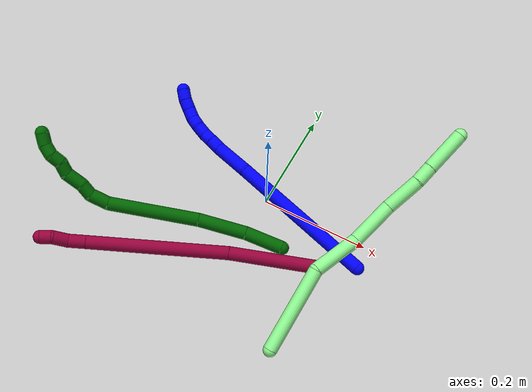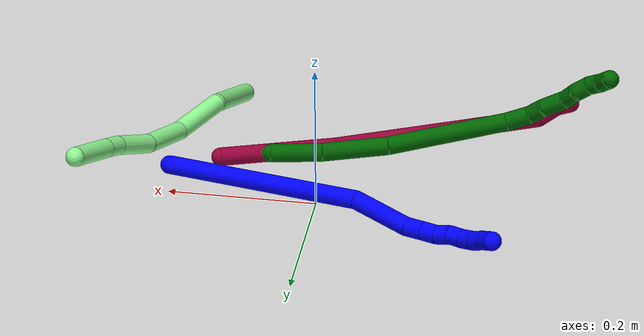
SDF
<sdf version="1.7">
 <world name="default">
  <model name="1">
   <static>0</static>
   <link name="1">
    <collision name="collision-cylinder-e_1_1_4">
     <pose>-0.122406 0.049401 0.041511 -0.871965 -1.08567 0.547983</pose>
     <geometry><cylinder><radius>0.0125</radius><length>0.276745</length></cylinder></geometry>
     <surface>
      <friction><ode><mu>1.16</mu><mu2>1.16</mu2><slip1>0</slip1><slip2>0</slip2></ode></friction>
      <contact><ode><kp>1e+06</kp><kd>1</kd><max_vel>0</max_vel><min_depth>0.001</min_depth></ode></contact>
     </surface>
    </collision>
    <visual name="visual-cylinder-e_1_1_4">
     <pose>-0.122406 0.049401 0.041511 -0.871965 -1.08567 0.547983</pose>
     <geometry><cylinder><radius>0.0125</radius><length>0.276745</length></cylinder></geometry>
     <material><ambient>0 0 1 1</ambient></material>
    </visual>
    <collision name="collision-cylinder-e_2_4_5">
     <pose>-0.282557 0.109242 0.084381 -1.44143 -1.29879 1.1763</pose>
     <geometry><cylinder><radius>0.0125</radius><length>0.07837</length></cylinder></geometry>
     <surface>
      <friction><ode><mu>1.16</mu><mu2>1.16</mu2><slip1>0</slip1><slip2>0</slip2></ode></friction>
      <contact><ode><kp>1e+06</kp><kd>1</kd><max_vel>0</max_vel><min_depth>0.001</min_depth></ode></contact>
     </surface>
    </collision>
    <visual name="visual-cylinder-e_2_4_5">
     <pose>-0.282557 0.109242 0.084381 -1.44143 -1.29879 1.1763</pose>
     <geometry><cylinder><radius>0.0125</radius><length>0.07837</length></cylinder></geometry>
     <material><ambient>0 0 1 1</ambient></material>
    </visual>
    <collision name="collision-cylinder-e_3_5_6">
     <pose>-0.331107 0.124428 0.088595 -1.02914 -1.09706 0.665299</pose>
     <geometry><cylinder><radius>0.0125</radius><length>0.024286</length></cylinder></geometry>
     <surface>
      <friction><ode><mu>1.16</mu><mu2>1.16</mu2><slip1>0</slip1><slip2>0</slip2></ode></friction>
      <contact><ode><kp>1e+06</kp><kd>1</kd><max_vel>0</max_vel><min_depth>0.001</min_depth></ode></contact>
     </surface>
    </collision>
    <visual name="visual-cylinder-e_3_5_6">
     <pose>-0.331107 0.124428 0.088595 -1.02914 -1.09706 0.665299</pose>
     <geometry><cylinder><radius>0.0125</radius><length>0.024286</length></cylinder></geometry>
     <material><ambient>0 0 1 1</ambient></material>
    </visual>
    <collision name="collision-cylinder-e_4_6_7">
     <pose>-0.351133 0.133119 0.093727 -1.04735 -1.11209 0.689091</pose>
     <geometry><cylinder><radius>0.0125</radius><length>0.020566</length></cylinder></geometry>
     <surface>
      <friction><ode><mu>1.16</mu><mu2>1.16</mu2><slip1>0</slip1><slip2>0</slip2></ode></friction>
      <contact><ode><kp>1e+06</kp><kd>1</kd><max_vel>0</max_vel><min_depth>0.001</min_depth></ode></contact>
     </surface>
    </collision>
    <visual name="visual-cylinder-e_4_6_7">
     <pose>-0.351133 0.133119 0.093727 -1.04735 -1.11209 0.689091</pose>
     <geometry><cylinder><radius>0.0125</radius><length>0.020566</length></cylinder></geometry>
     <material><ambient>0 0 1 1</ambient></material>
    </visual>
    <collision name="collision-cylinder-e_5_7_8">
     <pose>-0.367777 0.142401 0.100062 -0.920827 -0.836089 0.433714</pose>
     <geometry><cylinder><radius>0.0125</radius><length>0.020008</length></cylinder></geometry>
     <surface>
      <friction><ode><mu>1.16</mu><mu2>1.16</mu2><slip1>0</slip1><slip2>0</slip2></ode></friction>
      <contact><ode><kp>1e+06</kp><kd>1</kd><max_vel>0</max_vel><min_depth>0.001</min_depth></ode></contact>
     </surface>
    </collision>
    <visual name="visual-cylinder-e_5_7_8">
     <pose>-0.367777 0.142401 0.100062 -0.920827 -0.836089 0.433714</pose>
     <geometry><cylinder><radius>0.0125</radius><length>0.020008</length></cylinder></geometry>
     <material><ambient>0 0 1 1</ambient></material>
    </visual>
    <collision name="collision-cylinder-e_6_8_9">
     <pose>-0.38349 0.153088 0.105794 -1.26759 -0.976405 0.744258</pose>
     <geometry><cylinder><radius>0.0125</radius><length>0.020014</length></cylinder></geometry>
     <surface>
      <friction><ode><mu>1.16</mu><mu2>1.16</mu2><slip1>0</slip1><slip2>0</slip2></ode></friction>
      <contact><ode><kp>1e+06</kp><kd>1</kd><max_vel>0</max_vel><min_depth>0.001</min_depth></ode></contact>
     </surface>
    </collision>
    <visual name="visual-cylinder-e_6_8_9">
     <pose>-0.38349 0.153088 0.105794 -1.26759 -0.976405 0.744258</pose>
     <geometry><cylinder><radius>0.0125</radius><length>0.020014</length></cylinder></geometry>
     <material><ambient>0 0 1 1</ambient></material>
    </visual>
    <collision name="collision-cylinder-e_7_9_10">
     <pose>-0.398294 0.16575 0.109505 -1.29897 -0.709043 0.54805</pose>
     <geometry><cylinder><radius>0.0125</radius><length>0.020005</length></cylinder></geometry>
     <surface>
      <friction><ode><mu>1.16</mu><mu2>1.16</mu2><slip1>0</slip1><slip2>0</slip2></ode></friction>
      <contact><ode><kp>1e+06</kp><kd>1</kd><max_vel>0</max_vel><min_depth>0.001</min_depth></ode></contact>
     </surface>
    </collision>
    <visual name="visual-cylinder-e_7_9_10">
     <pose>-0.398294 0.16575 0.109505 -1.29897 -0.709043 0.54805</pose>
     <geometry><cylinder><radius>0.0125</radius><length>0.020005</length></cylinder></geometry>
     <material><ambient>0 0 1 1</ambient></material>
    </visual>
    <collision name="collision-cylinder-e_8_10_11">
     <pose>-0.410429 0.180727 0.114654 -1.1852 -0.597023 0.408593</pose>
     <geometry><cylinder><radius>0.0125</radius><length>0.020003</length></cylinder></geometry>
     <surface>
      <friction><ode><mu>1.16</mu><mu2>1.16</mu2><slip1>0</slip1><slip2>0</slip2></ode></friction>
      <contact><ode><kp>1e+06</kp><kd>1</kd><max_vel>0</max_vel><min_depth>0.001</min_depth></ode></contact>
     </surface>
    </collision>
    <visual name="visual-cylinder-e_8_10_11">
     <pose>-0.410429 0.180727 0.114654 -1.1852 -0.597023 0.408593</pose>
     <geometry><cylinder><radius>0.0125</radius><length>0.020003</length></cylinder></geometry>
     <material><ambient>0 0 1 1</ambient></material>
    </visual>
    <collision name="collision-cylinder-e_9_11_2">
     <pose>-0.4207 0.197068 0.119533 -1.36982 -0.48334 0.397356</pose>
     <geometry><cylinder><radius>0.0125</radius><length>0.020003</length></cylinder></geometry>
     <surface>
      <friction><ode><mu>1.16</mu><mu2>1.16</mu2><slip1>0</slip1><slip2>0</slip2></ode></friction>
      <contact><ode><kp>1e+06</kp><kd>1</kd><max_vel>0</max_vel><min_depth>0.001</min_depth></ode></contact>
     </surface>
    </collision>
    <visual name="visual-cylinder-e_9_11_2">
     <pose>-0.4207 0.197068 0.119533 -1.36982 -0.48334 0.397356</pose>
     <geometry><cylinder><radius>0.0125</radius><length>0.020003</length></cylinder></geometry>
     <material><ambient>0 0 1 1</ambient></material>
    </visual>
    <collision name="collision-sphere-2">
     <pose>-0.425348 0.205745 0.121301 0 -0 0</pose>
     <geometry><sphere><radius>0.0125</radius></sphere></geometry>
     <surface>
      <friction><ode><mu>1.16</mu><mu2>1.16</mu2><slip1>0</slip1><slip2>0</slip2></ode></friction>
      <contact><ode><kp>1e+06</kp><kd>1</kd><max_vel>0</max_vel><min_depth>0.001</min_depth></ode></contact>
     </surface>
    </collision>
    <visual name="visual-sphere-2">
     <pose>-0.425348 0.205745 0.121301 0 -0 0</pose>
     <geometry><sphere><radius>0.0125</radius></sphere></geometry>
     <material><ambient>0 0 1 1</ambient></material>
    </visual>
    <collision name="collision-sphere-11">
     <pose>-0.416051 0.18839 0.117765 0 -0 0</pose>
     <geometry><sphere><radius>0.0125</radius></sphere></geometry>
     <surface>
      <friction><ode><mu>1.16</mu><mu2>1.16</mu2><slip1>0</slip1><slip2>0</slip2></ode></friction>
      <contact><ode><kp>1e+06</kp><kd>1</kd><max_vel>0</max_vel><min_depth>0.001</min_depth></ode></contact>
     </surface>
    </collision>
    <visual name="visual-sphere-11">
     <pose>-0.416051 0.18839 0.117765 0 -0 0</pose>
     <geometry><sphere><radius>0.0125</radius></sphere></geometry>
     <material><ambient>0 0 1 1</ambient></material>
    </visual>
    <collision name="collision-sphere-10">
     <pose>-0.404806 0.173063 0.111543 0 -0 0</pose>
     <geometry><sphere><radius>0.0125</radius></sphere></geometry>
     <surface>
      <friction><ode><mu>1.16</mu><mu2>1.16</mu2><slip1>0</slip1><slip2>0</slip2></ode></friction>
      <contact><ode><kp>1e+06</kp><kd>1</kd><max_vel>0</max_vel><min_depth>0.001</min_depth></ode></contact>
     </surface>
    </collision>
    <visual name="visual-sphere-10">
     <pose>-0.404806 0.173063 0.111543 0 -0 0</pose>
     <geometry><sphere><radius>0.0125</radius></sphere></geometry>
     <material><ambient>0 0 1 1</ambient></material>
    </visual>
    <collision name="collision-sphere-9">
     <pose>-0.391781 0.158437 0.107467 0 -0 0</pose>
     <geometry><sphere><radius>0.0125</radius></sphere></geometry>
     <surface>
      <friction><ode><mu>1.16</mu><mu2>1.16</mu2><slip1>0</slip1><slip2>0</slip2></ode></friction>
      <contact><ode><kp>1e+06</kp><kd>1</kd><max_vel>0</max_vel><min_depth>0.001</min_depth></ode></contact>
     </surface>
    </collision>
    <visual name="visual-sphere-9">
     <pose>-0.391781 0.158437 0.107467 0 -0 0</pose>
     <geometry><sphere><radius>0.0125</radius></sphere></geometry>
     <material><ambient>0 0 1 1</ambient></material>
    </visual>
    <collision name="collision-sphere-4">
     <pose>-0.244813 0.098802 0.083023 0 -0 0</pose>
     <geometry><sphere><radius>0.0125</radius></sphere></geometry>
     <surface>
      <friction><ode><mu>1.16</mu><mu2>1.16</mu2><slip1>0</slip1><slip2>0</slip2></ode></friction>
      <contact><ode><kp>1e+06</kp><kd>1</kd><max_vel>0</max_vel><min_depth>0.001</min_depth></ode></contact>
     </surface>
    </collision>
    <visual name="visual-sphere-4">
     <pose>-0.244813 0.098802 0.083023 0 -0 0</pose>
     <geometry><sphere><radius>0.0125</radius></sphere></geometry>
     <material><ambient>0 0 1 1</ambient></material>
    </visual>
    <collision name="collision-sphere-1">
     <geometry><sphere><radius>0.0125</radius></sphere></geometry>
     <surface>
      <friction><ode><mu>1.16</mu><mu2>1.16</mu2><slip1>0</slip1><slip2>0</slip2></ode></friction>
      <contact><ode><kp>1e+06</kp><kd>1</kd><max_vel>0</max_vel><min_depth>0.001</min_depth></ode></contact>
     </surface>
    </collision>
    <visual name="visual-sphere-1">
     <geometry><sphere><radius>0.0125</radius></sphere></geometry>
     <material><ambient>0 0 1 1</ambient></material>
    </visual>
    <collision name="collision-sphere-8">
     <pose>-0.3752 0.14774 0.10412 0 -0 0</pose>
     <geometry><sphere><radius>0.0125</radius></sphere></geometry>
     <surface>
      <friction><ode><mu>1.16</mu><mu2>1.16</mu2><slip1>0</slip1><slip2>0</slip2></ode></friction>
      <contact><ode><kp>1e+06</kp><kd>1</kd><max_vel>0</max_vel><min_depth>0.001</min_depth></ode></contact>
     </surface>
    </collision>
    <visual name="visual-sphere-8">
     <pose>-0.3752 0.14774 0.10412 0 -0 0</pose>
     <geometry><sphere><radius>0.0125</radius></sphere></geometry>
     <material><ambient>0 0 1 1</ambient></material>
    </visual>
    <collision name="collision-sphere-5">
     <pose>-0.320302 0.119681 0.085739 0 -0 0</pose>
     <geometry><sphere><radius>0.0125</radius></sphere></geometry>
     <surface>
      <friction><ode><mu>1.16</mu><mu2>1.16</mu2><slip1>0</slip1><slip2>0</slip2></ode></friction>
      <contact><ode><kp>1e+06</kp><kd>1</kd><max_vel>0</max_vel><min_depth>0.001</min_depth></ode></contact>
     </surface>
    </collision>
    <visual name="visual-sphere-5">
     <pose>-0.320302 0.119681 0.085739 0 -0 0</pose>
     <geometry><sphere><radius>0.0125</radius></sphere></geometry>
     <material><ambient>0 0 1 1</ambient></material>
    </visual>
    <collision name="collision-sphere-6">
     <pose>-0.341913 0.129175 0.091451 0 -0 0</pose>
     <geometry><sphere><radius>0.0125</radius></sphere></geometry>
     <surface>
      <friction><ode><mu>1.16</mu><mu2>1.16</mu2><slip1>0</slip1><slip2>0</slip2></ode></friction>
      <contact><ode><kp>1e+06</kp><kd>1</kd><max_vel>0</max_vel><min_depth>0.001</min_depth></ode></contact>
     </surface>
    </collision>
    <visual name="visual-sphere-6">
     <pose>-0.341913 0.129175 0.091451 0 -0 0</pose>
     <geometry><sphere><radius>0.0125</radius></sphere></geometry>
     <material><ambient>0 0 1 1</ambient></material>
    </visual>
    <collision name="collision-sphere-7">
     <pose>-0.360354 0.137062 0.096003 0 -0 0</pose>
     <geometry><sphere><radius>0.0125</radius></sphere></geometry>
     <surface>
      <friction><ode><mu>1.16</mu><mu2>1.16</mu2><slip1>0</slip1><slip2>0</slip2></ode></friction>
      <contact><ode><kp>1e+06</kp><kd>1</kd><max_vel>0</max_vel><min_depth>0.001</min_depth></ode></contact>
     </surface>
    </collision>
    <visual name="visual-sphere-7">
     <pose>-0.360354 0.137062 0.096003 0 -0 0</pose>
     <geometry><sphere><radius>0.0125</radius></sphere></geometry>
     <material><ambient>0 0 1 1</ambient></material>
    </visual>
    <inertial>
     <pose>-0.221817 0.089556 0.066349 0 -0 0</pose>
     <mass>0.5</mass>
     <inertia>
      <ixx>0.001131</ixx>
      <ixy>0</ixy>
      <ixz>0</ixz>
      <iyy>0.002113</iyy>
      <iyz>0</iyz>
      <izz>0.000979</izz>
     </inertia>
    </inertial>
   </link>
   <pose>0.208085 -0.048132 0.012369 0.690896 -0.420688 -0.190544</pose>
  </model>
  <model name="6">
   <static>0</static>
   <link name="6">
    <collision name="collision-cylinder-e_1_1_4">
     <pose>-0.010518 0.010585 0.031426 -0.324902 -0.307151 0.050729</pose>
     <geometry><cylinder><radius>0.0125</radius><length>0.069578</length></cylinder></geometry>
     <surface>
      <friction><ode><mu>1.16</mu><mu2>1.16</mu2><slip1>0</slip1><slip2>0</slip2></ode></friction>
      <contact><ode><kp>1e+06</kp><kd>1</kd><max_vel>0</max_vel><min_depth>0.001</min_depth></ode></contact>
     </surface>
    </collision>
    <visual name="visual-cylinder-e_1_1_4">
     <pose>-0.010518 0.010585 0.031426 -0.324902 -0.307151 0.050729</pose>
     <geometry><cylinder><radius>0.0125</radius><length>0.069578</length></cylinder></geometry>
     <material><ambient>0 0.392157 0.003922 1</ambient></material>
    </visual>
    <collision name="collision-cylinder-e_2_4_5">
     <pose>-0.02906 0.037333 0.103425 -0.379078 -0.181701 0.03495</pose>
     <geometry><cylinder><radius>0.0125</radius><length>0.088808</length></cylinder></geometry>
     <surface>
      <friction><ode><mu>1.16</mu><mu2>1.16</mu2><slip1>0</slip1><slip2>0</slip2></ode></friction>
      <contact><ode><kp>1e+06</kp><kd>1</kd><max_vel>0</max_vel><min_depth>0.001</min_depth></ode></contact>
     </surface>
    </collision>
    <visual name="visual-cylinder-e_2_4_5">
     <pose>-0.02906 0.037333 0.103425 -0.379078 -0.181701 0.03495</pose>
     <geometry><cylinder><radius>0.0125</radius><length>0.088808</length></cylinder></geometry>
     <material><ambient>0 0.392157 0.003922 1</ambient></material>
    </visual>
    <collision name="collision-cylinder-e_3_5_6">
     <pose>-0.043049 0.089514 0.217857 -0.453738 -0.072461 0.016734</pose>
     <geometry><cylinder><radius>0.0125</radius><length>0.16478</length></cylinder></geometry>
     <surface>
      <friction><ode><mu>1.16</mu><mu2>1.16</mu2><slip1>0</slip1><slip2>0</slip2></ode></friction>
      <contact><ode><kp>1e+06</kp><kd>1</kd><max_vel>0</max_vel><min_depth>0.001</min_depth></ode></contact>
     </surface>
    </collision>
    <visual name="visual-cylinder-e_3_5_6">
     <pose>-0.043049 0.089514 0.217857 -0.453738 -0.072461 0.016734</pose>
     <geometry><cylinder><radius>0.0125</radius><length>0.16478</length></cylinder></geometry>
     <material><ambient>0 0.392157 0.003922 1</ambient></material>
    </visual>
    <collision name="collision-cylinder-e_4_6_7">
     <pose>-0.054445 0.135043 0.305013 -0.62081 -0.320746 0.103685</pose>
     <geometry><cylinder><radius>0.0125</radius><length>0.034453</length></cylinder></geometry>
     <surface>
      <friction><ode><mu>1.16</mu><mu2>1.16</mu2><slip1>0</slip1><slip2>0</slip2></ode></friction>
      <contact><ode><kp>1e+06</kp><kd>1</kd><max_vel>0</max_vel><min_depth>0.001</min_depth></ode></contact>
     </surface>
    </collision>
    <visual name="visual-cylinder-e_4_6_7">
     <pose>-0.054445 0.135043 0.305013 -0.62081 -0.320746 0.103685</pose>
     <geometry><cylinder><radius>0.0125</radius><length>0.034453</length></cylinder></geometry>
     <material><ambient>0 0.392157 0.003922 1</ambient></material>
    </visual>
    <collision name="collision-cylinder-e_5_7_8">
     <pose>-0.066994 0.15226 0.323292 -0.997034 -0.659631 0.368475</pose>
     <geometry><cylinder><radius>0.0125</radius><length>0.023228</length></cylinder></geometry>
     <surface>
      <friction><ode><mu>1.16</mu><mu2>1.16</mu2><slip1>0</slip1><slip2>0</slip2></ode></friction>
      <contact><ode><kp>1e+06</kp><kd>1</kd><max_vel>0</max_vel><min_depth>0.001</min_depth></ode></contact>
     </surface>
    </collision>
    <visual name="visual-cylinder-e_5_7_8">
     <pose>-0.066994 0.15226 0.323292 -0.997034 -0.659631 0.368475</pose>
     <geometry><cylinder><radius>0.0125</radius><length>0.023228</length></cylinder></geometry>
     <material><ambient>0 0.392157 0.003922 1</ambient></material>
    </visual>
    <collision name="collision-cylinder-e_6_8_9">
     <pose>-0.081556 0.170131 0.339094 -0.754089 -0.464864 0.186924</pose>
     <geometry><cylinder><radius>0.0125</radius><length>0.033214</length></cylinder></geometry>
     <surface>
      <friction><ode><mu>1.16</mu><mu2>1.16</mu2><slip1>0</slip1><slip2>0</slip2></ode></friction>
      <contact><ode><kp>1e+06</kp><kd>1</kd><max_vel>0</max_vel><min_depth>0.001</min_depth></ode></contact>
     </surface>
    </collision>
    <visual name="visual-cylinder-e_6_8_9">
     <pose>-0.081556 0.170131 0.339094 -0.754089 -0.464864 0.186924</pose>
     <geometry><cylinder><radius>0.0125</radius><length>0.033214</length></cylinder></geometry>
     <material><ambient>0 0.392157 0.003922 1</ambient></material>
    </visual>
    <collision name="collision-cylinder-e_7_9_10">
     <pose>-0.097188 0.187893 0.352488 -1.24429 -0.795549 0.585347</pose>
     <geometry><cylinder><radius>0.0125</radius><length>0.022926</length></cylinder></geometry>
     <surface>
      <friction><ode><mu>1.16</mu><mu2>1.16</mu2><slip1>0</slip1><slip2>0</slip2></ode></friction>
      <contact><ode><kp>1e+06</kp><kd>1</kd><max_vel>0</max_vel><min_depth>0.001</min_depth></ode></contact>
     </surface>
    </collision>
    <visual name="visual-cylinder-e_7_9_10">
     <pose>-0.097188 0.187893 0.352488 -1.24429 -0.795549 0.585347</pose>
     <geometry><cylinder><radius>0.0125</radius><length>0.022926</length></cylinder></geometry>
     <material><ambient>0 0.392157 0.003922 1</ambient></material>
    </visual>
    <collision name="collision-cylinder-e_8_10_11">
     <pose>-0.110073 0.202763 0.360967 -0.888641 -0.464796 0.224401</pose>
     <geometry><cylinder><radius>0.0125</radius><length>0.020957</length></cylinder></geometry>
     <surface>
      <friction><ode><mu>1.16</mu><mu2>1.16</mu2><slip1>0</slip1><slip2>0</slip2></ode></friction>
      <contact><ode><kp>1e+06</kp><kd>1</kd><max_vel>0</max_vel><min_depth>0.001</min_depth></ode></contact>
     </surface>
    </collision>
    <visual name="visual-cylinder-e_8_10_11">
     <pose>-0.110073 0.202763 0.360967 -0.888641 -0.464796 0.224401</pose>
     <geometry><cylinder><radius>0.0125</radius><length>0.020957</length></cylinder></geometry>
     <material><ambient>0 0.392157 0.003922 1</ambient></material>
    </visual>
    <collision name="collision-cylinder-e_9_11_12">
     <pose>-0.122512 0.214525 0.371351 -0.786843 -0.884472 0.388128</pose>
     <geometry><cylinder><radius>0.0125</radius><length>0.020018</length></cylinder></geometry>
     <surface>
      <friction><ode><mu>1.16</mu><mu2>1.16</mu2><slip1>0</slip1><slip2>0</slip2></ode></friction>
      <contact><ode><kp>1e+06</kp><kd>1</kd><max_vel>0</max_vel><min_depth>0.001</min_depth></ode></contact>
     </surface>
    </collision>
    <visual name="visual-cylinder-e_9_11_12">
     <pose>-0.122512 0.214525 0.371351 -0.786843 -0.884472 0.388128</pose>
     <geometry><cylinder><radius>0.0125</radius><length>0.020018</length></cylinder></geometry>
     <material><ambient>0 0.392157 0.003922 1</ambient></material>
    </visual>
    <collision name="collision-cylinder-e_10_12_2">
     <pose>-0.13999 0.223926 0.37742 -1.25736 -1.08336 0.824835</pose>
     <geometry><cylinder><radius>0.0125</radius><length>0.022037</length></cylinder></geometry>
     <surface>
      <friction><ode><mu>1.16</mu><mu2>1.16</mu2><slip1>0</slip1><slip2>0</slip2></ode></friction>
      <contact><ode><kp>1e+06</kp><kd>1</kd><max_vel>0</max_vel><min_depth>0.001</min_depth></ode></contact>
     </surface>
    </collision>
    <visual name="visual-cylinder-e_10_12_2">
     <pose>-0.13999 0.223926 0.37742 -1.25736 -1.08336 0.824835</pose>
     <geometry><cylinder><radius>0.0125</radius><length>0.022037</length></cylinder></geometry>
     <material><ambient>0 0.392157 0.003922 1</ambient></material>
    </visual>
    <collision name="collision-sphere-2">
     <pose>-0.149726 0.228835 0.379011 0 -0 0</pose>
     <geometry><sphere><radius>0.0125</radius></sphere></geometry>
     <surface>
      <friction><ode><mu>1.16</mu><mu2>1.16</mu2><slip1>0</slip1><slip2>0</slip2></ode></friction>
      <contact><ode><kp>1e+06</kp><kd>1</kd><max_vel>0</max_vel><min_depth>0.001</min_depth></ode></contact>
     </surface>
    </collision>
    <visual name="visual-sphere-2">
     <pose>-0.149726 0.228835 0.379011 0 -0 0</pose>
     <geometry><sphere><radius>0.0125</radius></sphere></geometry>
     <material><ambient>0 0.392157 0.003922 1</ambient></material>
    </visual>
    <collision name="collision-sphere-12">
     <pose>-0.130255 0.219017 0.375829 0 -0 0</pose>
     <geometry><sphere><radius>0.0125</radius></sphere></geometry>
     <surface>
      <friction><ode><mu>1.16</mu><mu2>1.16</mu2><slip1>0</slip1><slip2>0</slip2></ode></friction>
      <contact><ode><kp>1e+06</kp><kd>1</kd><max_vel>0</max_vel><min_depth>0.001</min_depth></ode></contact>
     </surface>
    </collision>
    <visual name="visual-sphere-12">
     <pose>-0.130255 0.219017 0.375829 0 -0 0</pose>
     <geometry><sphere><radius>0.0125</radius></sphere></geometry>
     <material><ambient>0 0.392157 0.003922 1</ambient></material>
    </visual>
    <collision name="collision-sphere-11">
     <pose>-0.11477 0.210034 0.366872 0 -0 0</pose>
     <geometry><sphere><radius>0.0125</radius></sphere></geometry>
     <surface>
      <friction><ode><mu>1.16</mu><mu2>1.16</mu2><slip1>0</slip1><slip2>0</slip2></ode></friction>
      <contact><ode><kp>1e+06</kp><kd>1</kd><max_vel>0</max_vel><min_depth>0.001</min_depth></ode></contact>
     </surface>
    </collision>
    <visual name="visual-sphere-11">
     <pose>-0.11477 0.210034 0.366872 0 -0 0</pose>
     <geometry><sphere><radius>0.0125</radius></sphere></geometry>
     <material><ambient>0 0.392157 0.003922 1</ambient></material>
    </visual>
    <collision name="collision-sphere-10">
     <pose>-0.105376 0.195492 0.355061 0 -0 0</pose>
     <geometry><sphere><radius>0.0125</radius></sphere></geometry>
     <surface>
      <friction><ode><mu>1.16</mu><mu2>1.16</mu2><slip1>0</slip1><slip2>0</slip2></ode></friction>
      <contact><ode><kp>1e+06</kp><kd>1</kd><max_vel>0</max_vel><min_depth>0.001</min_depth></ode></contact>
     </surface>
    </collision>
    <visual name="visual-sphere-10">
     <pose>-0.105376 0.195492 0.355061 0 -0 0</pose>
     <geometry><sphere><radius>0.0125</radius></sphere></geometry>
     <material><ambient>0 0.392157 0.003922 1</ambient></material>
    </visual>
    <collision name="collision-sphere-9">
     <pose>-0.089001 0.180294 0.349914 0 -0 0</pose>
     <geometry><sphere><radius>0.0125</radius></sphere></geometry>
     <surface>
      <friction><ode><mu>1.16</mu><mu2>1.16</mu2><slip1>0</slip1><slip2>0</slip2></ode></friction>
      <contact><ode><kp>1e+06</kp><kd>1</kd><max_vel>0</max_vel><min_depth>0.001</min_depth></ode></contact>
     </surface>
    </collision>
    <visual name="visual-sphere-9">
     <pose>-0.089001 0.180294 0.349914 0 -0 0</pose>
     <geometry><sphere><radius>0.0125</radius></sphere></geometry>
     <material><ambient>0 0.392157 0.003922 1</ambient></material>
    </visual>
    <collision name="collision-sphere-4">
     <pose>-0.021037 0.021171 0.062852 0 -0 0</pose>
     <geometry><sphere><radius>0.0125</radius></sphere></geometry>
     <surface>
      <friction><ode><mu>1.16</mu><mu2>1.16</mu2><slip1>0</slip1><slip2>0</slip2></ode></friction>
      <contact><ode><kp>1e+06</kp><kd>1</kd><max_vel>0</max_vel><min_depth>0.001</min_depth></ode></contact>
     </surface>
    </collision>
    <visual name="visual-sphere-4">
     <pose>-0.021037 0.021171 0.062852 0 -0 0</pose>
     <geometry><sphere><radius>0.0125</radius></sphere></geometry>
     <material><ambient>0 0.392157 0.003922 1</ambient></material>
    </visual>
    <collision name="collision-sphere-1">
     <geometry><sphere><radius>0.0125</radius></sphere></geometry>
     <surface>
      <friction><ode><mu>1.16</mu><mu2>1.16</mu2><slip1>0</slip1><slip2>0</slip2></ode></friction>
      <contact><ode><kp>1e+06</kp><kd>1</kd><max_vel>0</max_vel><min_depth>0.001</min_depth></ode></contact>
     </surface>
    </collision>
    <visual name="visual-sphere-1">
     <geometry><sphere><radius>0.0125</radius></sphere></geometry>
     <material><ambient>0 0.392157 0.003922 1</ambient></material>
    </visual>
    <collision name="collision-sphere-8">
     <pose>-0.074111 0.159968 0.328274 0 -0 0</pose>
     <geometry><sphere><radius>0.0125</radius></sphere></geometry>
     <surface>
      <friction><ode><mu>1.16</mu><mu2>1.16</mu2><slip1>0</slip1><slip2>0</slip2></ode></friction>
      <contact><ode><kp>1e+06</kp><kd>1</kd><max_vel>0</max_vel><min_depth>0.001</min_depth></ode></contact>
     </surface>
    </collision>
    <visual name="visual-sphere-8">
     <pose>-0.074111 0.159968 0.328274 0 -0 0</pose>
     <geometry><sphere><radius>0.0125</radius></sphere></geometry>
     <material><ambient>0 0.392157 0.003922 1</ambient></material>
    </visual>
    <collision name="collision-sphere-5">
     <pose>-0.037084 0.053495 0.143997 0 -0 0</pose>
     <geometry><sphere><radius>0.0125</radius></sphere></geometry>
     <surface>
      <friction><ode><mu>1.16</mu><mu2>1.16</mu2><slip1>0</slip1><slip2>0</slip2></ode></friction>
      <contact><ode><kp>1e+06</kp><kd>1</kd><max_vel>0</max_vel><min_depth>0.001</min_depth></ode></contact>
     </surface>
    </collision>
    <visual name="visual-sphere-5">
     <pose>-0.037084 0.053495 0.143997 0 -0 0</pose>
     <geometry><sphere><radius>0.0125</radius></sphere></geometry>
     <material><ambient>0 0.392157 0.003922 1</ambient></material>
    </visual>
    <collision name="collision-sphere-6">
     <pose>-0.049014 0.125533 0.291716 0 -0 0</pose>
     <geometry><sphere><radius>0.0125</radius></sphere></geometry>
     <surface>
      <friction><ode><mu>1.16</mu><mu2>1.16</mu2><slip1>0</slip1><slip2>0</slip2></ode></friction>
      <contact><ode><kp>1e+06</kp><kd>1</kd><max_vel>0</max_vel><min_depth>0.001</min_depth></ode></contact>
     </surface>
    </collision>
    <visual name="visual-sphere-6">
     <pose>-0.049014 0.125533 0.291716 0 -0 0</pose>
     <geometry><sphere><radius>0.0125</radius></sphere></geometry>
     <material><ambient>0 0.392157 0.003922 1</ambient></material>
    </visual>
    <collision name="collision-sphere-7">
     <pose>-0.059876 0.144552 0.318311 0 -0 0</pose>
     <geometry><sphere><radius>0.0125</radius></sphere></geometry>
     <surface>
      <friction><ode><mu>1.16</mu><mu2>1.16</mu2><slip1>0</slip1><slip2>0</slip2></ode></friction>
      <contact><ode><kp>1e+06</kp><kd>1</kd><max_vel>0</max_vel><min_depth>0.001</min_depth></ode></contact>
     </surface>
    </collision>
    <visual name="visual-sphere-7">
     <pose>-0.059876 0.144552 0.318311 0 -0 0</pose>
     <geometry><sphere><radius>0.0125</radius></sphere></geometry>
     <material><ambient>0 0.392157 0.003922 1</ambient></material>
    </visual>
    <inertial>
     <pose>-0.053239 0.100856 0.215895 0 -0 0</pose>
     <mass>0.5</mass>
     <inertia>
      <ixx>0.000484</ixx>
      <ixy>0</ixy>
      <ixz>0</ixz>
      <iyy>0.000473</iyy>
      <iyz>0</iyz>
      <izz>-0.000121</izz>
     </inertia>
    </inertial>
   </link>
   <pose>0.074822 -0.081323 0.023047 1.93019 0.297955 -1.17497</pose>
  </model>
  <model name="8">
   <static>0</static>
   <link name="8">
    <collision name="collision-cylinder-e_1_1_4">
     <pose>-0.004543 0.00382 0.079052 -0.048285 -0.057345 0.001385</pose>
     <geometry><cylinder><radius>0.0125</radius><length>0.158548</length></cylinder></geometry>
     <surface>
      <friction><ode><mu>1.16</mu><mu2>1.16</mu2><slip1>0</slip1><slip2>0</slip2></ode></friction>
      <contact><ode><kp>1e+06</kp><kd>1</kd><max_vel>0</max_vel><min_depth>0.001</min_depth></ode></contact>
     </surface>
    </collision>
    <visual name="visual-cylinder-e_1_1_4">
     <pose>-0.004543 0.00382 0.079052 -0.048285 -0.057345 0.001385</pose>
     <geometry><cylinder><radius>0.0125</radius><length>0.158548</length></cylinder></geometry>
     <material><ambient>0.584314 0 0.227451 1</ambient></material>
    </visual>
    <collision name="collision-cylinder-e_2_4_5">
     <pose>-0.025671 0.006315 0.285629 0.010392 -0.129312 -0.000673</pose>
     <geometry><cylinder><radius>0.0125</radius><length>0.257214</length></cylinder></geometry>
     <surface>
      <friction><ode><mu>1.16</mu><mu2>1.16</mu2><slip1>0</slip1><slip2>0</slip2></ode></friction>
      <contact><ode><kp>1e+06</kp><kd>1</kd><max_vel>0</max_vel><min_depth>0.001</min_depth></ode></contact>
     </surface>
    </collision>
    <visual name="visual-cylinder-e_2_4_5">
     <pose>-0.025671 0.006315 0.285629 0.010392 -0.129312 -0.000673</pose>
     <geometry><cylinder><radius>0.0125</radius><length>0.257214</length></cylinder></geometry>
     <material><ambient>0.584314 0 0.227451 1</ambient></material>
    </visual>
    <collision name="collision-cylinder-e_3_5_6">
     <pose>-0.044415 0.00482 0.42968 0.010244 -0.129966 -0.000667</pose>
     <geometry><cylinder><radius>0.0125</radius><length>0.033332</length></cylinder></geometry>
     <surface>
      <friction><ode><mu>1.16</mu><mu2>1.16</mu2><slip1>0</slip1><slip2>0</slip2></ode></friction>
      <contact><ode><kp>1e+06</kp><kd>1</kd><max_vel>0</max_vel><min_depth>0.001</min_depth></ode></contact>
     </surface>
    </collision>
    <visual name="visual-cylinder-e_3_5_6">
     <pose>-0.044415 0.00482 0.42968 0.010244 -0.129966 -0.000667</pose>
     <geometry><cylinder><radius>0.0125</radius><length>0.033332</length></cylinder></geometry>
     <material><ambient>0.584314 0 0.227451 1</ambient></material>
    </visual>
    <collision name="collision-cylinder-e_4_6_7">
     <pose>-0.045301 -0.001393 0.459812 0.417948 0.08534 0.018109</pose>
     <geometry><cylinder><radius>0.0125</radius><length>0.029887</length></cylinder></geometry>
     <surface>
      <friction><ode><mu>1.16</mu><mu2>1.16</mu2><slip1>0</slip1><slip2>0</slip2></ode></friction>
      <contact><ode><kp>1e+06</kp><kd>1</kd><max_vel>0</max_vel><min_depth>0.001</min_depth></ode></contact>
     </surface>
    </collision>
    <visual name="visual-cylinder-e_4_6_7">
     <pose>-0.045301 -0.001393 0.459812 0.417948 0.08534 0.018109</pose>
     <geometry><cylinder><radius>0.0125</radius><length>0.029887</length></cylinder></geometry>
     <material><ambient>0.584314 0 0.227451 1</ambient></material>
    </visual>
    <collision name="collision-cylinder-e_5_7_2">
     <pose>-0.04595 -0.008398 0.483707 0.093292 -0.18395 -0.008611</pose>
     <geometry><cylinder><radius>0.0125</radius><length>0.021019</length></cylinder></geometry>
     <surface>
      <friction><ode><mu>1.16</mu><mu2>1.16</mu2><slip1>0</slip1><slip2>0</slip2></ode></friction>
      <contact><ode><kp>1e+06</kp><kd>1</kd><max_vel>0</max_vel><min_depth>0.001</min_depth></ode></contact>
     </surface>
    </collision>
    <visual name="visual-cylinder-e_5_7_2">
     <pose>-0.04595 -0.008398 0.483707 0.093292 -0.18395 -0.008611</pose>
     <geometry><cylinder><radius>0.0125</radius><length>0.021019</length></cylinder></geometry>
     <material><ambient>0.584314 0 0.227451 1</ambient></material>
    </visual>
    <collision name="collision-sphere-2">
     <pose>-0.047872 -0.009361 0.493994 0 -0 0</pose>
     <geometry><sphere><radius>0.0125</radius></sphere></geometry>
     <surface>
      <friction><ode><mu>1.16</mu><mu2>1.16</mu2><slip1>0</slip1><slip2>0</slip2></ode></friction>
      <contact><ode><kp>1e+06</kp><kd>1</kd><max_vel>0</max_vel><min_depth>0.001</min_depth></ode></contact>
     </surface>
    </collision>
    <visual name="visual-sphere-2">
     <pose>-0.047872 -0.009361 0.493994 0 -0 0</pose>
     <geometry><sphere><radius>0.0125</radius></sphere></geometry>
     <material><ambient>0.584314 0 0.227451 1</ambient></material>
    </visual>
    <collision name="collision-sphere-7">
     <pose>-0.044027 -0.007436 0.473419 0 -0 0</pose>
     <geometry><sphere><radius>0.0125</radius></sphere></geometry>
     <surface>
      <friction><ode><mu>1.16</mu><mu2>1.16</mu2><slip1>0</slip1><slip2>0</slip2></ode></friction>
      <contact><ode><kp>1e+06</kp><kd>1</kd><max_vel>0</max_vel><min_depth>0.001</min_depth></ode></contact>
     </surface>
    </collision>
    <visual name="visual-sphere-7">
     <pose>-0.044027 -0.007436 0.473419 0 -0 0</pose>
     <geometry><sphere><radius>0.0125</radius></sphere></geometry>
     <material><ambient>0.584314 0 0.227451 1</ambient></material>
    </visual>
    <collision name="collision-sphere-6">
     <pose>-0.046575 0.004651 0.446204 0 -0 0</pose>
     <geometry><sphere><radius>0.0125</radius></sphere></geometry>
     <surface>
      <friction><ode><mu>1.16</mu><mu2>1.16</mu2><slip1>0</slip1><slip2>0</slip2></ode></friction>
      <contact><ode><kp>1e+06</kp><kd>1</kd><max_vel>0</max_vel><min_depth>0.001</min_depth></ode></contact>
     </surface>
    </collision>
    <visual name="visual-sphere-6">
     <pose>-0.046575 0.004651 0.446204 0 -0 0</pose>
     <geometry><sphere><radius>0.0125</radius></sphere></geometry>
     <material><ambient>0.584314 0 0.227451 1</ambient></material>
    </visual>
    <collision name="collision-sphere-5">
     <pose>-0.042255 0.004989 0.413156 0 -0 0</pose>
     <geometry><sphere><radius>0.0125</radius></sphere></geometry>
     <surface>
      <friction><ode><mu>1.16</mu><mu2>1.16</mu2><slip1>0</slip1><slip2>0</slip2></ode></friction>
      <contact><ode><kp>1e+06</kp><kd>1</kd><max_vel>0</max_vel><min_depth>0.001</min_depth></ode></contact>
     </surface>
    </collision>
    <visual name="visual-sphere-5">
     <pose>-0.042255 0.004989 0.413156 0 -0 0</pose>
     <geometry><sphere><radius>0.0125</radius></sphere></geometry>
     <material><ambient>0.584314 0 0.227451 1</ambient></material>
    </visual>
    <collision name="collision-sphere-1">
     <geometry><sphere><radius>0.0125</radius></sphere></geometry>
     <surface>
      <friction><ode><mu>1.16</mu><mu2>1.16</mu2><slip1>0</slip1><slip2>0</slip2></ode></friction>
      <contact><ode><kp>1e+06</kp><kd>1</kd><max_vel>0</max_vel><min_depth>0.001</min_depth></ode></contact>
     </surface>
    </collision>
    <visual name="visual-sphere-1">
     <geometry><sphere><radius>0.0125</radius></sphere></geometry>
     <material><ambient>0.584314 0 0.227451 1</ambient></material>
    </visual>
    <collision name="collision-sphere-4">
     <pose>-0.009087 0.00764 0.158103 0 -0 0</pose>
     <geometry><sphere><radius>0.0125</radius></sphere></geometry>
     <surface>
      <friction><ode><mu>1.16</mu><mu2>1.16</mu2><slip1>0</slip1><slip2>0</slip2></ode></friction>
      <contact><ode><kp>1e+06</kp><kd>1</kd><max_vel>0</max_vel><min_depth>0.001</min_depth></ode></contact>
     </surface>
    </collision>
    <visual name="visual-sphere-4">
     <pose>-0.009087 0.00764 0.158103 0 -0 0</pose>
     <geometry><sphere><radius>0.0125</radius></sphere></geometry>
     <material><ambient>0.584314 0 0.227451 1</ambient></material>
    </visual>
    <inertial>
     <pose>-0.022247 0.004345 0.248466 0 -0 0</pose>
     <mass>0.5</mass>
     <inertia>
      <ixx>0.001759</ixx>
      <ixy>0</ixy>
      <ixz>0</ixz>
      <iyy>0.001774</iyy>
      <iyz>0</iyz>
      <izz>0.000243</izz>
     </inertia>
    </inertial>
   </link>
   <pose>0.14441 -0.080179 0.011484 -1.48178 -0.616222 1.82385</pose>
  </model>
  <model name="13">
   <static>0</static>
   <link name="13">
    <collision name="collision-cylinder-e_1_1_4">
     <pose>0.0396 0.053489 0.039922 -0.92963 0.535488 -0.273415</pose>
     <geometry><cylinder><radius>0.0125</radius><length>0.155216</length></cylinder></geometry>
     <surface>
      <friction><ode><mu>1.16</mu><mu2>1.16</mu2><slip1>0</slip1><slip2>0</slip2></ode></friction>
      <contact><ode><kp>1e+06</kp><kd>1</kd><max_vel>0</max_vel><min_depth>0.001</min_depth></ode></contact>
     </surface>
    </collision>
    <visual name="visual-cylinder-e_1_1_4">
     <pose>0.0396 0.053489 0.039922 -0.92963 0.535488 -0.273415</pose>
     <geometry><cylinder><radius>0.0125</radius><length>0.155216</length></cylinder></geometry>
     <material><ambient>0.564706 0.984314 0.572549 1</ambient></material>
    </visual>
    <collision name="collision-cylinder-e_2_4_5">
     <pose>0.080526 0.144534 0.104118 -0.996995 0.029629 -0.016129</pose>
     <geometry><cylinder><radius>0.0125</radius><length>0.089475</length></cylinder></geometry>
     <surface>
      <friction><ode><mu>1.16</mu><mu2>1.16</mu2><slip1>0</slip1><slip2>0</slip2></ode></friction>
      <contact><ode><kp>1e+06</kp><kd>1</kd><max_vel>0</max_vel><min_depth>0.001</min_depth></ode></contact>
     </surface>
    </collision>
    <visual name="visual-cylinder-e_2_4_5">
     <pose>0.080526 0.144534 0.104118 -0.996995 0.029629 -0.016129</pose>
     <geometry><cylinder><radius>0.0125</radius><length>0.089475</length></cylinder></geometry>
     <material><ambient>0.564706 0.984314 0.572549 1</ambient></material>
    </visual>
    <collision name="collision-cylinder-e_3_5_6">
     <pose>0.093653 0.216138 0.147535 -1.05862 0.293425 -0.172464</pose>
     <geometry><cylinder><radius>0.0125</radius><length>0.081608</length></cylinder></geometry>
     <surface>
      <friction><ode><mu>1.16</mu><mu2>1.16</mu2><slip1>0</slip1><slip2>0</slip2></ode></friction>
      <contact><ode><kp>1e+06</kp><kd>1</kd><max_vel>0</max_vel><min_depth>0.001</min_depth></ode></contact>
     </surface>
    </collision>
    <visual name="visual-cylinder-e_3_5_6">
     <pose>0.093653 0.216138 0.147535 -1.05862 0.293425 -0.172464</pose>
     <geometry><cylinder><radius>0.0125</radius><length>0.081608</length></cylinder></geometry>
     <material><ambient>0.564706 0.984314 0.572549 1</ambient></material>
    </visual>
    <collision name="collision-cylinder-e_4_6_7">
     <pose>0.117017 0.279905 0.176278 -1.25832 0.354561 -0.259333</pose>
     <geometry><cylinder><radius>0.0125</radius><length>0.066606</length></cylinder></geometry>
     <surface>
      <friction><ode><mu>1.16</mu><mu2>1.16</mu2><slip1>0</slip1><slip2>0</slip2></ode></friction>
      <contact><ode><kp>1e+06</kp><kd>1</kd><max_vel>0</max_vel><min_depth>0.001</min_depth></ode></contact>
     </surface>
    </collision>
    <visual name="visual-cylinder-e_4_6_7">
     <pose>0.117017 0.279905 0.176278 -1.25832 0.354561 -0.259333</pose>
     <geometry><cylinder><radius>0.0125</radius><length>0.066606</length></cylinder></geometry>
     <material><ambient>0.564706 0.984314 0.572549 1</ambient></material>
    </visual>
    <collision name="collision-cylinder-e_5_7_8">
     <pose>0.13456 0.322725 0.19268 -1.09202 0.384931 -0.23573</pose>
     <geometry><cylinder><radius>0.0125</radius><length>0.031853</length></cylinder></geometry>
     <surface>
      <friction><ode><mu>1.16</mu><mu2>1.16</mu2><slip1>0</slip1><slip2>0</slip2></ode></friction>
      <contact><ode><kp>1e+06</kp><kd>1</kd><max_vel>0</max_vel><min_depth>0.001</min_depth></ode></contact>
     </surface>
    </collision>
    <visual name="visual-cylinder-e_5_7_8">
     <pose>0.13456 0.322725 0.19268 -1.09202 0.384931 -0.23573</pose>
     <geometry><cylinder><radius>0.0125</radius><length>0.031853</length></cylinder></geometry>
     <material><ambient>0.564706 0.984314 0.572549 1</ambient></material>
    </visual>
    <collision name="collision-cylinder-e_6_8_2">
     <pose>0.153945 0.367 0.215724 -1.09041 0.364316 -0.222521</pose>
     <geometry><cylinder><radius>0.0125</radius><length>0.075241</length></cylinder></geometry>
     <surface>
      <friction><ode><mu>1.16</mu><mu2>1.16</mu2><slip1>0</slip1><slip2>0</slip2></ode></friction>
      <contact><ode><kp>1e+06</kp><kd>1</kd><max_vel>0</max_vel><min_depth>0.001</min_depth></ode></contact>
     </surface>
    </collision>
    <visual name="visual-cylinder-e_6_8_2">
     <pose>0.153945 0.367 0.215724 -1.09041 0.364316 -0.222521</pose>
     <geometry><cylinder><radius>0.0125</radius><length>0.075241</length></cylinder></geometry>
     <material><ambient>0.564706 0.984314 0.572549 1</ambient></material>
    </visual>
    <collision name="collision-sphere-2">
     <pose>0.167349 0.398173 0.231969 0 -0 0</pose>
     <geometry><sphere><radius>0.0125</radius></sphere></geometry>
     <surface>
      <friction><ode><mu>1.16</mu><mu2>1.16</mu2><slip1>0</slip1><slip2>0</slip2></ode></friction>
      <contact><ode><kp>1e+06</kp><kd>1</kd><max_vel>0</max_vel><min_depth>0.001</min_depth></ode></contact>
     </surface>
    </collision>
    <visual name="visual-sphere-2">
     <pose>0.167349 0.398173 0.231969 0 -0 0</pose>
     <geometry><sphere><radius>0.0125</radius></sphere></geometry>
     <material><ambient>0.564706 0.984314 0.572549 1</ambient></material>
    </visual>
    <collision name="collision-sphere-4">
     <pose>0.079201 0.106978 0.079844 0 -0 0</pose>
     <geometry><sphere><radius>0.0125</radius></sphere></geometry>
     <surface>
      <friction><ode><mu>1.16</mu><mu2>1.16</mu2><slip1>0</slip1><slip2>0</slip2></ode></friction>
      <contact><ode><kp>1e+06</kp><kd>1</kd><max_vel>0</max_vel><min_depth>0.001</min_depth></ode></contact>
     </surface>
    </collision>
    <visual name="visual-sphere-4">
     <pose>0.079201 0.106978 0.079844 0 -0 0</pose>
     <geometry><sphere><radius>0.0125</radius></sphere></geometry>
     <material><ambient>0.564706 0.984314 0.572549 1</ambient></material>
    </visual>
    <collision name="collision-sphere-1">
     <geometry><sphere><radius>0.0125</radius></sphere></geometry>
     <surface>
      <friction><ode><mu>1.16</mu><mu2>1.16</mu2><slip1>0</slip1><slip2>0</slip2></ode></friction>
      <contact><ode><kp>1e+06</kp><kd>1</kd><max_vel>0</max_vel><min_depth>0.001</min_depth></ode></contact>
     </surface>
    </collision>
    <visual name="visual-sphere-1">
     <geometry><sphere><radius>0.0125</radius></sphere></geometry>
     <material><ambient>0.564706 0.984314 0.572549 1</ambient></material>
    </visual>
    <collision name="collision-sphere-8">
     <pose>0.14054 0.335827 0.19948 0 -0 0</pose>
     <geometry><sphere><radius>0.0125</radius></sphere></geometry>
     <surface>
      <friction><ode><mu>1.16</mu><mu2>1.16</mu2><slip1>0</slip1><slip2>0</slip2></ode></friction>
      <contact><ode><kp>1e+06</kp><kd>1</kd><max_vel>0</max_vel><min_depth>0.001</min_depth></ode></contact>
     </surface>
    </collision>
    <visual name="visual-sphere-8">
     <pose>0.14054 0.335827 0.19948 0 -0 0</pose>
     <geometry><sphere><radius>0.0125</radius></sphere></geometry>
     <material><ambient>0.564706 0.984314 0.572549 1</ambient></material>
    </visual>
    <collision name="collision-sphere-5">
     <pose>0.081851 0.18209 0.128392 0 -0 0</pose>
     <geometry><sphere><radius>0.0125</radius></sphere></geometry>
     <surface>
      <friction><ode><mu>1.16</mu><mu2>1.16</mu2><slip1>0</slip1><slip2>0</slip2></ode></friction>
      <contact><ode><kp>1e+06</kp><kd>1</kd><max_vel>0</max_vel><min_depth>0.001</min_depth></ode></contact>
     </surface>
    </collision>
    <visual name="visual-sphere-5">
     <pose>0.081851 0.18209 0.128392 0 -0 0</pose>
     <geometry><sphere><radius>0.0125</radius></sphere></geometry>
     <material><ambient>0.564706 0.984314 0.572549 1</ambient></material>
    </visual>
    <collision name="collision-sphere-6">
     <pose>0.105455 0.250186 0.166677 0 -0 0</pose>
     <geometry><sphere><radius>0.0125</radius></sphere></geometry>
     <surface>
      <friction><ode><mu>1.16</mu><mu2>1.16</mu2><slip1>0</slip1><slip2>0</slip2></ode></friction>
      <contact><ode><kp>1e+06</kp><kd>1</kd><max_vel>0</max_vel><min_depth>0.001</min_depth></ode></contact>
     </surface>
    </collision>
    <visual name="visual-sphere-6">
     <pose>0.105455 0.250186 0.166677 0 -0 0</pose>
     <geometry><sphere><radius>0.0125</radius></sphere></geometry>
     <material><ambient>0.564706 0.984314 0.572549 1</ambient></material>
    </visual>
    <collision name="collision-sphere-7">
     <pose>0.128579 0.309624 0.18588 0 -0 0</pose>
     <geometry><sphere><radius>0.0125</radius></sphere></geometry>
     <surface>
      <friction><ode><mu>1.16</mu><mu2>1.16</mu2><slip1>0</slip1><slip2>0</slip2></ode></friction>
      <contact><ode><kp>1e+06</kp><kd>1</kd><max_vel>0</max_vel><min_depth>0.001</min_depth></ode></contact>
     </surface>
    </collision>
    <visual name="visual-sphere-7">
     <pose>0.128579 0.309624 0.18588 0 -0 0</pose>
     <geometry><sphere><radius>0.0125</radius></sphere></geometry>
     <material><ambient>0.564706 0.984314 0.572549 1</ambient></material>
    </visual>
    <inertial>
     <pose>0.089316 0.19082 0.123325 0 -0 0</pose>
     <mass>0.5</mass>
     <inertia>
      <ixx>0.00035</ixx>
      <ixy>0</ixy>
      <ixz>0</ixz>
      <iyy>0.000243</iyy>
      <iyz>0</iyz>
      <izz>-0.000556</izz>
     </inertia>
    </inertial>
   </link>
   <pose>0.143719 -0.256489 0.012497 2.5984 -1.0604 2.70123</pose>
  </model>
 </world>
</sdf>
